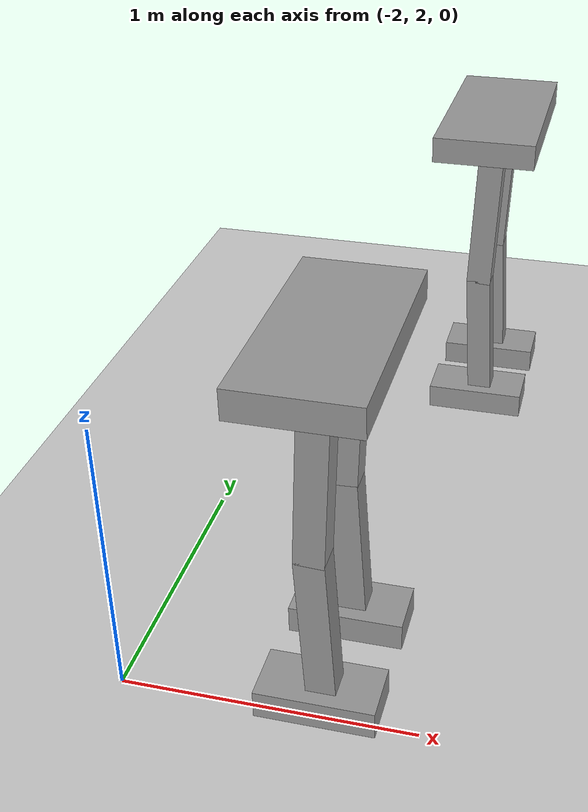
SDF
<sdf version="1.6">
 <world name="default">
  <model name="ground_plane">
   <static>1</static>
   <link name="link">
    <collision name="collision">
     <geometry><plane><normal>0 0 1</normal><size>100 100</size></plane></geometry>
     <surface>
      <contact><collide_bitmask>65535</collide_bitmask></contact>
      <friction><ode><mu>100</mu><mu2>50</mu2></ode></friction>
     </surface>
    </collision>
    <visual name="visual">
     <cast_shadows>0</cast_shadows>
     <geometry><plane><normal>0 0 1</normal><size>100 100</size></plane></geometry>
     <material>
      <script><uri>file://media/materials/scripts/gazebo.material</uri><name>Gazebo/Grey</name></script>
     </material>
    </visual>
   </link>
  </model>
  <model name="HumanoidRobot_clone_0">
   <link name="link_0">
    <inertial>
     <mass>1</mass>
     <inertia>
      <ixx>0.166667</ixx>
      <ixy>0</ixy>
      <ixz>0</ixz>
      <iyy>0.166667</iyy>
      <iyz>0</iyz>
      <izz>0.166667</izz>
     </inertia>
    </inertial>
    <pose>0 0 1.2 0 -0 0</pose>
    <visual name="visual">
     <geometry><box><size>0.4 0.8 0.1</size></box></geometry>
     <material>
      <lighting>1</lighting>
      <script><uri>file://media/materials/scripts/gazebo.material</uri><name>Gazebo/Grey</name></script>
      <shader type="vertex"><normal_map>__default__</normal_map></shader>
      <ambient>0.3 0.3 0.3 1</ambient>
      <diffuse>0.7 0.7 0.7 1</diffuse>
      <specular>0.01 0.01 0.01 1</specular>
      <emissive>0 0 0 1</emissive>
     </material>
    </visual>
    <collision name="collision">
     <geometry><box><size>0.4 0.8 0.1</size></box></geometry>
     <surface>
      <friction>
       <ode><mu>1</mu><mu2>1</mu2><fdir1>0 0 0</fdir1><slip1>0</slip1><slip2>0</slip2></ode>
       <torsional>
        <coefficient>1</coefficient>
        <patch_radius>0</patch_radius>
        <surface_radius>0</surface_radius>
        <use_patch_radius>1</use_patch_radius>
        <ode><slip>0</slip></ode>
       </torsional>
      </friction>
      <bounce><restitution_coefficient>0</restitution_coefficient><threshold>1e+06</threshold></bounce>
      <contact>
       <collide_without_contact>0</collide_without_contact>
       <collide_without_contact_bitmask>1</collide_without_contact_bitmask>
       <collide_bitmask>1</collide_bitmask>
       <ode>
        <soft_cfm>0</soft_cfm>
        <soft_erp>0.2</soft_erp>
        <kp>1e+13</kp>
        <kd>1</kd>
        <max_vel>0.01</max_vel>
        <min_depth>0</min_depth>
       </ode>
       <bullet>
        <split_impulse>1</split_impulse>
        <split_impulse_penetration_threshold>-0.01</split_impulse_penetration_threshold>
        <soft_cfm>0</soft_cfm>
        <soft_erp>0.2</soft_erp>
        <kp>1e+13</kp>
        <kd>1</kd>
       </bullet>
      </contact>
     </surface>
    </collision>
   </link>
   <link name="link_0_clone">
    <inertial>
     <mass>1</mass>
     <inertia>
      <ixx>0.166667</ixx>
      <ixy>0</ixy>
      <ixz>0</ixz>
      <iyy>0.166667</iyy>
      <iyz>0</iyz>
      <izz>0.166667</izz>
     </inertia>
    </inertial>
    <pose>0 0.2 0 0 -0 0</pose>
    <visual name="visual">
     <geometry><box><size>0.4 0.2 0.1</size></box></geometry>
     <material>
      <lighting>1</lighting>
      <script><uri>file://media/materials/scripts/gazebo.material</uri><name>Gazebo/Grey</name></script>
      <shader type="vertex"><normal_map>__default__</normal_map></shader>
      <ambient>0.3 0.3 0.3 1</ambient>
      <diffuse>0.7 0.7 0.7 1</diffuse>
      <specular>0.01 0.01 0.01 1</specular>
      <emissive>0 0 0 1</emissive>
     </material>
    </visual>
    <collision name="collision">
     <geometry><box><size>0.4 0.2 0.1</size></box></geometry>
     <surface>
      <friction>
       <ode><mu>1</mu><mu2>1</mu2><fdir1>0 0 0</fdir1><slip1>0</slip1><slip2>0</slip2></ode>
       <torsional>
        <coefficient>1</coefficient>
        <patch_radius>0</patch_radius>
        <surface_radius>0</surface_radius>
        <use_patch_radius>1</use_patch_radius>
        <ode><slip>0</slip></ode>
       </torsional>
      </friction>
      <bounce><restitution_coefficient>0</restitution_coefficient><threshold>1e+06</threshold></bounce>
      <contact>
       <collide_without_contact>0</collide_without_contact>
       <collide_without_contact_bitmask>1</collide_without_contact_bitmask>
       <collide_bitmask>1</collide_bitmask>
       <ode>
        <soft_cfm>0</soft_cfm>
        <soft_erp>0.2</soft_erp>
        <kp>1e+13</kp>
        <kd>1</kd>
        <max_vel>0.01</max_vel>
        <min_depth>0</min_depth>
       </ode>
       <bullet>
        <split_impulse>1</split_impulse>
        <split_impulse_penetration_threshold>-0.01</split_impulse_penetration_threshold>
        <soft_cfm>0</soft_cfm>
        <soft_erp>0.2</soft_erp>
        <kp>1e+13</kp>
        <kd>1</kd>
       </bullet>
      </contact>
     </surface>
    </collision>
   </link>
   <link name="link_0_clone_clone">
    <inertial>
     <mass>1</mass>
     <inertia>
      <ixx>0.166667</ixx>
      <ixy>0</ixy>
      <ixz>0</ixz>
      <iyy>0.166667</iyy>
      <iyz>0</iyz>
      <izz>0.166667</izz>
     </inertia>
    </inertial>
    <pose>0 -0.2 0 0 -0 0</pose>
    <visual name="visual">
     <geometry><box><size>0.4 0.2 0.1</size></box></geometry>
     <material>
      <lighting>1</lighting>
      <script><uri>file://media/materials/scripts/gazebo.material</uri><name>Gazebo/Grey</name></script>
      <shader type="vertex"><normal_map>__default__</normal_map></shader>
      <ambient>0.3 0.3 0.3 1</ambient>
      <diffuse>0.7 0.7 0.7 1</diffuse>
      <specular>0.01 0.01 0.01 1</specular>
      <emissive>0 0 0 1</emissive>
     </material>
    </visual>
    <collision name="collision">
     <geometry><box><size>0.4 0.2 0.1</size></box></geometry>
     <surface>
      <friction>
       <ode><mu>1</mu><mu2>1</mu2><fdir1>0 0 0</fdir1><slip1>0</slip1><slip2>0</slip2></ode>
       <torsional>
        <coefficient>1</coefficient>
        <patch_radius>0</patch_radius>
        <surface_radius>0</surface_radius>
        <use_patch_radius>1</use_patch_radius>
        <ode><slip>0</slip></ode>
       </torsional>
      </friction>
      <bounce><restitution_coefficient>0</restitution_coefficient><threshold>1e+06</threshold></bounce>
      <contact>
       <collide_without_contact>0</collide_without_contact>
       <collide_without_contact_bitmask>1</collide_without_contact_bitmask>
       <collide_bitmask>1</collide_bitmask>
       <ode>
        <soft_cfm>0</soft_cfm>
        <soft_erp>0.2</soft_erp>
        <kp>1e+13</kp>
        <kd>1</kd>
        <max_vel>0.01</max_vel>
        <min_depth>0</min_depth>
       </ode>
       <bullet>
        <split_impulse>1</split_impulse>
        <split_impulse_penetration_threshold>-0.01</split_impulse_penetration_threshold>
        <soft_cfm>0</soft_cfm>
        <soft_erp>0.2</soft_erp>
        <kp>1e+13</kp>
        <kd>1</kd>
       </bullet>
      </contact>
     </surface>
    </collision>
   </link>
   <link name="link_1">
    <inertial>
     <mass>1</mass>
     <inertia>
      <ixx>0.166667</ixx>
      <ixy>0</ixy>
      <ixz>0</ixz>
      <iyy>0.166667</iyy>
      <iyz>0</iyz>
      <izz>0.166667</izz>
     </inertia>
    </inertial>
    <pose>0 0.2 0.86 0 0.05 0</pose>
    <visual name="visual">
     <geometry><box><size>0.1 0.1 0.6</size></box></geometry>
     <material>
      <lighting>1</lighting>
      <script><uri>file://media/materials/scripts/gazebo.material</uri><name>Gazebo/Grey</name></script>
      <shader type="vertex"><normal_map>__default__</normal_map></shader>
      <ambient>0.3 0.3 0.3 1</ambient>
      <diffuse>0.7 0.7 0.7 1</diffuse>
      <specular>0.01 0.01 0.01 1</specular>
      <emissive>0 0 0 1</emissive>
     </material>
    </visual>
    <collision name="collision">
     <geometry><box><size>0.1 0.1 0.6</size></box></geometry>
     <surface>
      <friction>
       <ode><mu>1</mu><mu2>1</mu2><fdir1>0 0 0</fdir1><slip1>0</slip1><slip2>0</slip2></ode>
       <torsional>
        <coefficient>1</coefficient>
        <patch_radius>0</patch_radius>
        <surface_radius>0</surface_radius>
        <use_patch_radius>1</use_patch_radius>
        <ode><slip>0</slip></ode>
       </torsional>
      </friction>
      <bounce><restitution_coefficient>0</restitution_coefficient><threshold>1e+06</threshold></bounce>
      <contact>
       <collide_without_contact>0</collide_without_contact>
       <collide_without_contact_bitmask>1</collide_without_contact_bitmask>
       <collide_bitmask>1</collide_bitmask>
       <ode>
        <soft_cfm>0</soft_cfm>
        <soft_erp>0.2</soft_erp>
        <kp>1e+13</kp>
        <kd>1</kd>
        <max_vel>0.01</max_vel>
        <min_depth>0</min_depth>
       </ode>
       <bullet>
        <split_impulse>1</split_impulse>
        <split_impulse_penetration_threshold>-0.01</split_impulse_penetration_threshold>
        <soft_cfm>0</soft_cfm>
        <soft_erp>0.2</soft_erp>
        <kp>1e+13</kp>
        <kd>1</kd>
       </bullet>
      </contact>
     </surface>
    </collision>
   </link>
   <link name="link_1_clone">
    <inertial>
     <mass>1</mass>
     <inertia>
      <ixx>0.166667</ixx>
      <ixy>0</ixy>
      <ixz>0</ixz>
      <iyy>0.166667</iyy>
      <iyz>0</iyz>
      <izz>0.166667</izz>
     </inertia>
    </inertial>
    <pose>0 -0.2 0.86 0 0.05 0</pose>
    <visual name="visual">
     <geometry><box><size>0.1 0.1 0.6</size></box></geometry>
     <material>
      <lighting>1</lighting>
      <script><uri>file://media/materials/scripts/gazebo.material</uri><name>Gazebo/Grey</name></script>
      <shader type="vertex"><normal_map>__default__</normal_map></shader>
      <ambient>0.3 0.3 0.3 1</ambient>
      <diffuse>0.7 0.7 0.7 1</diffuse>
      <specular>0.01 0.01 0.01 1</specular>
      <emissive>0 0 0 1</emissive>
     </material>
    </visual>
    <collision name="collision">
     <geometry><box><size>0.1 0.1 0.6</size></box></geometry>
     <surface>
      <friction>
       <ode><mu>1</mu><mu2>1</mu2><fdir1>0 0 0</fdir1><slip1>0</slip1><slip2>0</slip2></ode>
       <torsional>
        <coefficient>1</coefficient>
        <patch_radius>0</patch_radius>
        <surface_radius>0</surface_radius>
        <use_patch_radius>1</use_patch_radius>
        <ode><slip>0</slip></ode>
       </torsional>
      </friction>
      <bounce><restitution_coefficient>0</restitution_coefficient><threshold>1e+06</threshold></bounce>
      <contact>
       <collide_without_contact>0</collide_without_contact>
       <collide_without_contact_bitmask>1</collide_without_contact_bitmask>
       <collide_bitmask>1</collide_bitmask>
       <ode>
        <soft_cfm>0</soft_cfm>
        <soft_erp>0.2</soft_erp>
        <kp>1e+13</kp>
        <kd>1</kd>
        <max_vel>0.01</max_vel>
        <min_depth>0</min_depth>
       </ode>
       <bullet>
        <split_impulse>1</split_impulse>
        <split_impulse_penetration_threshold>-0.01</split_impulse_penetration_threshold>
        <soft_cfm>0</soft_cfm>
        <soft_erp>0.2</soft_erp>
        <kp>1e+13</kp>
        <kd>1</kd>
       </bullet>
      </contact>
     </surface>
    </collision>
   </link>
   <link name="link_1_clone_0">
    <inertial>
     <mass>1</mass>
     <inertia>
      <ixx>0.166667</ixx>
      <ixy>0</ixy>
      <ixz>0</ixz>
      <iyy>0.166667</iyy>
      <iyz>0</iyz>
      <izz>0.166667</izz>
     </inertia>
    </inertial>
    <pose>0 0.2 0.27 0 -0.05 0</pose>
    <visual name="visual">
     <geometry><box><size>0.1 0.1 0.6</size></box></geometry>
     <material>
      <lighting>1</lighting>
      <script><uri>file://media/materials/scripts/gazebo.material</uri><name>Gazebo/Grey</name></script>
      <shader type="vertex"><normal_map>__default__</normal_map></shader>
      <ambient>0.3 0.3 0.3 1</ambient>
      <diffuse>0.7 0.7 0.7 1</diffuse>
      <specular>0.01 0.01 0.01 1</specular>
      <emissive>0 0 0 1</emissive>
     </material>
    </visual>
    <collision name="collision">
     <geometry><box><size>0.1 0.1 0.6</size></box></geometry>
     <surface>
      <friction>
       <ode><mu>1</mu><mu2>1</mu2><fdir1>0 0 0</fdir1><slip1>0</slip1><slip2>0</slip2></ode>
       <torsional>
        <coefficient>1</coefficient>
        <patch_radius>0</patch_radius>
        <surface_radius>0</surface_radius>
        <use_patch_radius>1</use_patch_radius>
        <ode><slip>0</slip></ode>
       </torsional>
      </friction>
      <bounce><restitution_coefficient>0</restitution_coefficient><threshold>1e+06</threshold></bounce>
      <contact>
       <collide_without_contact>0</collide_without_contact>
       <collide_without_contact_bitmask>1</collide_without_contact_bitmask>
       <collide_bitmask>1</collide_bitmask>
       <ode>
        <soft_cfm>0</soft_cfm>
        <soft_erp>0.2</soft_erp>
        <kp>1e+13</kp>
        <kd>1</kd>
        <max_vel>0.01</max_vel>
        <min_depth>0</min_depth>
       </ode>
       <bullet>
        <split_impulse>1</split_impulse>
        <split_impulse_penetration_threshold>-0.01</split_impulse_penetration_threshold>
        <soft_cfm>0</soft_cfm>
        <soft_erp>0.2</soft_erp>
        <kp>1e+13</kp>
        <kd>1</kd>
       </bullet>
      </contact>
     </surface>
    </collision>
   </link>
   <link name="link_1_clone_0_clone">
    <inertial>
     <mass>1</mass>
     <inertia>
      <ixx>0.166667</ixx>
      <ixy>0</ixy>
      <ixz>0</ixz>
      <iyy>0.166667</iyy>
      <iyz>0</iyz>
      <izz>0.166667</izz>
     </inertia>
    </inertial>
    <pose>0 -0.2 0.27 0 -0.05 0</pose>
    <visual name="visual">
     <geometry><box><size>0.1 0.1 0.6</size></box></geometry>
     <material>
      <lighting>1</lighting>
      <script><uri>file://media/materials/scripts/gazebo.material</uri><name>Gazebo/Grey</name></script>
      <shader type="vertex"><normal_map>__default__</normal_map></shader>
      <ambient>0.3 0.3 0.3 1</ambient>
      <diffuse>0.7 0.7 0.7 1</diffuse>
      <specular>0.01 0.01 0.01 1</specular>
      <emissive>0 0 0 1</emissive>
     </material>
    </visual>
    <collision name="collision">
     <geometry><box><size>0.1 0.1 0.6</size></box></geometry>
     <surface>
      <friction>
       <ode><mu>1</mu><mu2>1</mu2><fdir1>0 0 0</fdir1><slip1>0</slip1><slip2>0</slip2></ode>
       <torsional>
        <coefficient>1</coefficient>
        <patch_radius>0</patch_radius>
        <surface_radius>0</surface_radius>
        <use_patch_radius>1</use_patch_radius>
        <ode><slip>0</slip></ode>
       </torsional>
      </friction>
      <bounce><restitution_coefficient>0</restitution_coefficient><threshold>1e+06</threshold></bounce>
      <contact>
       <collide_without_contact>0</collide_without_contact>
       <collide_without_contact_bitmask>1</collide_without_contact_bitmask>
       <collide_bitmask>1</collide_bitmask>
       <ode>
        <soft_cfm>0</soft_cfm>
        <soft_erp>0.2</soft_erp>
        <kp>1e+13</kp>
        <kd>1</kd>
        <max_vel>0.01</max_vel>
        <min_depth>0</min_depth>
       </ode>
       <bullet>
        <split_impulse>1</split_impulse>
        <split_impulse_penetration_threshold>-0.01</split_impulse_penetration_threshold>
        <soft_cfm>0</soft_cfm>
        <soft_erp>0.2</soft_erp>
        <kp>1e+13</kp>
        <kd>1</kd>
       </bullet>
      </contact>
     </surface>
    </collision>
   </link>
   <joint name="link_0_JOINT_0" type="fixed">
    <parent>link_0</parent>
    <child>link_1_clone</child>
    <physics>
     <ode><limit><cfm>0</cfm><erp>0.2</erp></limit><suspension><cfm>0</cfm><erp>0.2</erp></suspension></ode>
    </physics>
   </joint>
   <joint name="link_0_JOINT_1" type="fixed">
    <parent>link_0</parent>
    <child>link_1</child>
    <physics>
     <ode><limit><cfm>0</cfm><erp>0.2</erp></limit><suspension><cfm>0</cfm><erp>0.2</erp></suspension></ode>
    </physics>
   </joint>
   <joint name="link_1_JOINT_3" type="fixed">
    <parent>link_1</parent>
    <child>link_1_clone_0</child>
    <physics>
     <ode><limit><cfm>0</cfm><erp>0.2</erp></limit><suspension><cfm>0</cfm><erp>0.2</erp></suspension></ode>
    </physics>
   </joint>
   <joint name="link_1_clone_0_JOINT_5" type="fixed">
    <parent>link_1_clone_0</parent>
    <child>link_0_clone</child>
    <physics>
     <ode><limit><cfm>0</cfm><erp>0.2</erp></limit><suspension><cfm>0</cfm><erp>0.2</erp></suspension></ode>
    </physics>
   </joint>
   <joint name="link_1_clone_0_clone_JOINT_4" type="fixed">
    <parent>link_1_clone_0_clone</parent>
    <child>link_0_clone_clone</child>
    <physics>
     <ode><limit><cfm>0</cfm><erp>0.2</erp></limit><suspension><cfm>0</cfm><erp>0.2</erp></suspension></ode>
    </physics>
   </joint>
   <joint name="link_1_clone_JOINT_2" type="fixed">
    <parent>link_1_clone</parent>
    <child>link_1_clone_0_clone</child>
    <physics>
     <ode><limit><cfm>0</cfm><erp>0.2</erp></limit><suspension><cfm>0</cfm><erp>0.2</erp></suspension></ode>
    </physics>
   </joint>
   <static>0</static>
   <pose>-1.13078 4.1809 0.05 2e-06 -1e-06 -7.2e-05</pose>
  </model>
  <model name="HumanoidRobot_clone_1">
   <link name="link_0">
    <inertial>
     <mass>1</mass>
     <inertia>
      <ixx>0.166667</ixx>
      <ixy>0</ixy>
      <ixz>0</ixz>
      <iyy>0.166667</iyy>
      <iyz>0</iyz>
      <izz>0.166667</izz>
     </inertia>
    </inertial>
    <pose>0 0 1.2 0 -0 0</pose>
    <visual name="visual">
     <geometry><box><size>0.4 0.8 0.1</size></box></geometry>
     <material>
      <lighting>1</lighting>
      <script><uri>file://media/materials/scripts/gazebo.material</uri><name>Gazebo/Grey</name></script>
      <shader type="vertex"><normal_map>__default__</normal_map></shader>
      <ambient>0.3 0.3 0.3 1</ambient>
      <diffuse>0.7 0.7 0.7 1</diffuse>
      <specular>0.01 0.01 0.01 1</specular>
      <emissive>0 0 0 1</emissive>
     </material>
    </visual>
    <collision name="collision">
     <geometry><box><size>0.4 0.8 0.1</size></box></geometry>
     <surface>
      <friction>
       <ode><mu>1</mu><mu2>1</mu2><fdir1>0 0 0</fdir1><slip1>0</slip1><slip2>0</slip2></ode>
       <torsional>
        <coefficient>1</coefficient>
        <patch_radius>0</patch_radius>
        <surface_radius>0</surface_radius>
        <use_patch_radius>1</use_patch_radius>
        <ode><slip>0</slip></ode>
       </torsional>
      </friction>
      <bounce><restitution_coefficient>0</restitution_coefficient><threshold>1e+06</threshold></bounce>
      <contact>
       <collide_without_contact>0</collide_without_contact>
       <collide_without_contact_bitmask>1</collide_without_contact_bitmask>
       <collide_bitmask>1</collide_bitmask>
       <ode>
        <soft_cfm>0</soft_cfm>
        <soft_erp>0.2</soft_erp>
        <kp>1e+13</kp>
        <kd>1</kd>
        <max_vel>0.01</max_vel>
        <min_depth>0</min_depth>
       </ode>
       <bullet>
        <split_impulse>1</split_impulse>
        <split_impulse_penetration_threshold>-0.01</split_impulse_penetration_threshold>
        <soft_cfm>0</soft_cfm>
        <soft_erp>0.2</soft_erp>
        <kp>1e+13</kp>
        <kd>1</kd>
       </bullet>
      </contact>
     </surface>
    </collision>
   </link>
   <link name="link_0_clone">
    <inertial>
     <mass>1</mass>
     <inertia>
      <ixx>0.166667</ixx>
      <ixy>0</ixy>
      <ixz>0</ixz>
      <iyy>0.166667</iyy>
      <iyz>0</iyz>
      <izz>0.166667</izz>
     </inertia>
    </inertial>
    <pose>0 0.2 0 0 -0 0</pose>
    <visual name="visual">
     <geometry><box><size>0.4 0.2 0.1</size></box></geometry>
     <material>
      <lighting>1</lighting>
      <script><uri>file://media/materials/scripts/gazebo.material</uri><name>Gazebo/Grey</name></script>
      <shader type="vertex"><normal_map>__default__</normal_map></shader>
      <ambient>0.3 0.3 0.3 1</ambient>
      <diffuse>0.7 0.7 0.7 1</diffuse>
      <specular>0.01 0.01 0.01 1</specular>
      <emissive>0 0 0 1</emissive>
     </material>
    </visual>
    <collision name="collision">
     <geometry><box><size>0.4 0.2 0.1</size></box></geometry>
     <surface>
      <friction>
       <ode><mu>1</mu><mu2>1</mu2><fdir1>0 0 0</fdir1><slip1>0</slip1><slip2>0</slip2></ode>
       <torsional>
        <coefficient>1</coefficient>
        <patch_radius>0</patch_radius>
        <surface_radius>0</surface_radius>
        <use_patch_radius>1</use_patch_radius>
        <ode><slip>0</slip></ode>
       </torsional>
      </friction>
      <bounce><restitution_coefficient>0</restitution_coefficient><threshold>1e+06</threshold></bounce>
      <contact>
       <collide_without_contact>0</collide_without_contact>
       <collide_without_contact_bitmask>1</collide_without_contact_bitmask>
       <collide_bitmask>1</collide_bitmask>
       <ode>
        <soft_cfm>0</soft_cfm>
        <soft_erp>0.2</soft_erp>
        <kp>1e+13</kp>
        <kd>1</kd>
        <max_vel>0.01</max_vel>
        <min_depth>0</min_depth>
       </ode>
       <bullet>
        <split_impulse>1</split_impulse>
        <split_impulse_penetration_threshold>-0.01</split_impulse_penetration_threshold>
        <soft_cfm>0</soft_cfm>
        <soft_erp>0.2</soft_erp>
        <kp>1e+13</kp>
        <kd>1</kd>
       </bullet>
      </contact>
     </surface>
    </collision>
   </link>
   <link name="link_0_clone_clone">
    <inertial>
     <mass>1</mass>
     <inertia>
      <ixx>0.166667</ixx>
      <ixy>0</ixy>
      <ixz>0</ixz>
      <iyy>0.166667</iyy>
      <iyz>0</iyz>
      <izz>0.166667</izz>
     </inertia>
    </inertial>
    <pose>0 -0.2 0 0 -0 0</pose>
    <visual name="visual">
     <geometry><box><size>0.4 0.2 0.1</size></box></geometry>
     <material>
      <lighting>1</lighting>
      <script><uri>file://media/materials/scripts/gazebo.material</uri><name>Gazebo/Grey</name></script>
      <shader type="vertex"><normal_map>__default__</normal_map></shader>
      <ambient>0.3 0.3 0.3 1</ambient>
      <diffuse>0.7 0.7 0.7 1</diffuse>
      <specular>0.01 0.01 0.01 1</specular>
      <emissive>0 0 0 1</emissive>
     </material>
    </visual>
    <collision name="collision">
     <geometry><box><size>0.4 0.2 0.1</size></box></geometry>
     <surface>
      <friction>
       <ode><mu>1</mu><mu2>1</mu2><fdir1>0 0 0</fdir1><slip1>0</slip1><slip2>0</slip2></ode>
       <torsional>
        <coefficient>1</coefficient>
        <patch_radius>0</patch_radius>
        <surface_radius>0</surface_radius>
        <use_patch_radius>1</use_patch_radius>
        <ode><slip>0</slip></ode>
       </torsional>
      </friction>
      <bounce><restitution_coefficient>0</restitution_coefficient><threshold>1e+06</threshold></bounce>
      <contact>
       <collide_without_contact>0</collide_without_contact>
       <collide_without_contact_bitmask>1</collide_without_contact_bitmask>
       <collide_bitmask>1</collide_bitmask>
       <ode>
        <soft_cfm>0</soft_cfm>
        <soft_erp>0.2</soft_erp>
        <kp>1e+13</kp>
        <kd>1</kd>
        <max_vel>0.01</max_vel>
        <min_depth>0</min_depth>
       </ode>
       <bullet>
        <split_impulse>1</split_impulse>
        <split_impulse_penetration_threshold>-0.01</split_impulse_penetration_threshold>
        <soft_cfm>0</soft_cfm>
        <soft_erp>0.2</soft_erp>
        <kp>1e+13</kp>
        <kd>1</kd>
       </bullet>
      </contact>
     </surface>
    </collision>
   </link>
   <link name="link_1">
    <inertial>
     <mass>1</mass>
     <inertia>
      <ixx>0.166667</ixx>
      <ixy>0</ixy>
      <ixz>0</ixz>
      <iyy>0.166667</iyy>
      <iyz>0</iyz>
      <izz>0.166667</izz>
     </inertia>
    </inertial>
    <pose>0 0.2 0.86 0 0.05 0</pose>
    <visual name="visual">
     <geometry><box><size>0.1 0.1 0.6</size></box></geometry>
     <material>
      <lighting>1</lighting>
      <script><uri>file://media/materials/scripts/gazebo.material</uri><name>Gazebo/Grey</name></script>
      <shader type="vertex"><normal_map>__default__</normal_map></shader>
      <ambient>0.3 0.3 0.3 1</ambient>
      <diffuse>0.7 0.7 0.7 1</diffuse>
      <specular>0.01 0.01 0.01 1</specular>
      <emissive>0 0 0 1</emissive>
     </material>
    </visual>
    <collision name="collision">
     <geometry><box><size>0.1 0.1 0.6</size></box></geometry>
     <surface>
      <friction>
       <ode><mu>1</mu><mu2>1</mu2><fdir1>0 0 0</fdir1><slip1>0</slip1><slip2>0</slip2></ode>
       <torsional>
        <coefficient>1</coefficient>
        <patch_radius>0</patch_radius>
        <surface_radius>0</surface_radius>
        <use_patch_radius>1</use_patch_radius>
        <ode><slip>0</slip></ode>
       </torsional>
      </friction>
      <bounce><restitution_coefficient>0</restitution_coefficient><threshold>1e+06</threshold></bounce>
      <contact>
       <collide_without_contact>0</collide_without_contact>
       <collide_without_contact_bitmask>1</collide_without_contact_bitmask>
       <collide_bitmask>1</collide_bitmask>
       <ode>
        <soft_cfm>0</soft_cfm>
        <soft_erp>0.2</soft_erp>
        <kp>1e+13</kp>
        <kd>1</kd>
        <max_vel>0.01</max_vel>
        <min_depth>0</min_depth>
       </ode>
       <bullet>
        <split_impulse>1</split_impulse>
        <split_impulse_penetration_threshold>-0.01</split_impulse_penetration_threshold>
        <soft_cfm>0</soft_cfm>
        <soft_erp>0.2</soft_erp>
        <kp>1e+13</kp>
        <kd>1</kd>
       </bullet>
      </contact>
     </surface>
    </collision>
   </link>
   <link name="link_1_clone">
    <inertial>
     <mass>1</mass>
     <inertia>
      <ixx>0.166667</ixx>
      <ixy>0</ixy>
      <ixz>0</ixz>
      <iyy>0.166667</iyy>
      <iyz>0</iyz>
      <izz>0.166667</izz>
     </inertia>
    </inertial>
    <pose>0 -0.2 0.86 0 0.05 0</pose>
    <visual name="visual">
     <geometry><box><size>0.1 0.1 0.6</size></box></geometry>
     <material>
      <lighting>1</lighting>
      <script><uri>file://media/materials/scripts/gazebo.material</uri><name>Gazebo/Grey</name></script>
      <shader type="vertex"><normal_map>__default__</normal_map></shader>
      <ambient>0.3 0.3 0.3 1</ambient>
      <diffuse>0.7 0.7 0.7 1</diffuse>
      <specular>0.01 0.01 0.01 1</specular>
      <emissive>0 0 0 1</emissive>
     </material>
    </visual>
    <collision name="collision">
     <geometry><box><size>0.1 0.1 0.6</size></box></geometry>
     <surface>
      <friction>
       <ode><mu>1</mu><mu2>1</mu2><fdir1>0 0 0</fdir1><slip1>0</slip1><slip2>0</slip2></ode>
       <torsional>
        <coefficient>1</coefficient>
        <patch_radius>0</patch_radius>
        <surface_radius>0</surface_radius>
        <use_patch_radius>1</use_patch_radius>
        <ode><slip>0</slip></ode>
       </torsional>
      </friction>
      <bounce><restitution_coefficient>0</restitution_coefficient><threshold>1e+06</threshold></bounce>
      <contact>
       <collide_without_contact>0</collide_without_contact>
       <collide_without_contact_bitmask>1</collide_without_contact_bitmask>
       <collide_bitmask>1</collide_bitmask>
       <ode>
        <soft_cfm>0</soft_cfm>
        <soft_erp>0.2</soft_erp>
        <kp>1e+13</kp>
        <kd>1</kd>
        <max_vel>0.01</max_vel>
        <min_depth>0</min_depth>
       </ode>
       <bullet>
        <split_impulse>1</split_impulse>
        <split_impulse_penetration_threshold>-0.01</split_impulse_penetration_threshold>
        <soft_cfm>0</soft_cfm>
        <soft_erp>0.2</soft_erp>
        <kp>1e+13</kp>
        <kd>1</kd>
       </bullet>
      </contact>
     </surface>
    </collision>
   </link>
   <link name="link_1_clone_0">
    <inertial>
     <mass>1</mass>
     <inertia>
      <ixx>0.166667</ixx>
      <ixy>0</ixy>
      <ixz>0</ixz>
      <iyy>0.166667</iyy>
      <iyz>0</iyz>
      <izz>0.166667</izz>
     </inertia>
    </inertial>
    <pose>0 0.2 0.27 0 -0.05 0</pose>
    <visual name="visual">
     <geometry><box><size>0.1 0.1 0.6</size></box></geometry>
     <material>
      <lighting>1</lighting>
      <script><uri>file://media/materials/scripts/gazebo.material</uri><name>Gazebo/Grey</name></script>
      <shader type="vertex"><normal_map>__default__</normal_map></shader>
      <ambient>0.3 0.3 0.3 1</ambient>
      <diffuse>0.7 0.7 0.7 1</diffuse>
      <specular>0.01 0.01 0.01 1</specular>
      <emissive>0 0 0 1</emissive>
     </material>
    </visual>
    <collision name="collision">
     <geometry><box><size>0.1 0.1 0.6</size></box></geometry>
     <surface>
      <friction>
       <ode><mu>1</mu><mu2>1</mu2><fdir1>0 0 0</fdir1><slip1>0</slip1><slip2>0</slip2></ode>
       <torsional>
        <coefficient>1</coefficient>
        <patch_radius>0</patch_radius>
        <surface_radius>0</surface_radius>
        <use_patch_radius>1</use_patch_radius>
        <ode><slip>0</slip></ode>
       </torsional>
      </friction>
      <bounce><restitution_coefficient>0</restitution_coefficient><threshold>1e+06</threshold></bounce>
      <contact>
       <collide_without_contact>0</collide_without_contact>
       <collide_without_contact_bitmask>1</collide_without_contact_bitmask>
       <collide_bitmask>1</collide_bitmask>
       <ode>
        <soft_cfm>0</soft_cfm>
        <soft_erp>0.2</soft_erp>
        <kp>1e+13</kp>
        <kd>1</kd>
        <max_vel>0.01</max_vel>
        <min_depth>0</min_depth>
       </ode>
       <bullet>
        <split_impulse>1</split_impulse>
        <split_impulse_penetration_threshold>-0.01</split_impulse_penetration_threshold>
        <soft_cfm>0</soft_cfm>
        <soft_erp>0.2</soft_erp>
        <kp>1e+13</kp>
        <kd>1</kd>
       </bullet>
      </contact>
     </surface>
    </collision>
   </link>
   <link name="link_1_clone_0_clone">
    <inertial>
     <mass>1</mass>
     <inertia>
      <ixx>0.166667</ixx>
      <ixy>0</ixy>
      <ixz>0</ixz>
      <iyy>0.166667</iyy>
      <iyz>0</iyz>
      <izz>0.166667</izz>
     </inertia>
    </inertial>
    <pose>0 -0.2 0.27 0 -0.05 0</pose>
    <visual name="visual">
     <geometry><box><size>0.1 0.1 0.6</size></box></geometry>
     <material>
      <lighting>1</lighting>
      <script><uri>file://media/materials/scripts/gazebo.material</uri><name>Gazebo/Grey</name></script>
      <shader type="vertex"><normal_map>__default__</normal_map></shader>
      <ambient>0.3 0.3 0.3 1</ambient>
      <diffuse>0.7 0.7 0.7 1</diffuse>
      <specular>0.01 0.01 0.01 1</specular>
      <emissive>0 0 0 1</emissive>
     </material>
    </visual>
    <collision name="collision">
     <geometry><box><size>0.1 0.1 0.6</size></box></geometry>
     <surface>
      <friction>
       <ode><mu>1</mu><mu2>1</mu2><fdir1>0 0 0</fdir1><slip1>0</slip1><slip2>0</slip2></ode>
       <torsional>
        <coefficient>1</coefficient>
        <patch_radius>0</patch_radius>
        <surface_radius>0</surface_radius>
        <use_patch_radius>1</use_patch_radius>
        <ode><slip>0</slip></ode>
       </torsional>
      </friction>
      <bounce><restitution_coefficient>0</restitution_coefficient><threshold>1e+06</threshold></bounce>
      <contact>
       <collide_without_contact>0</collide_without_contact>
       <collide_without_contact_bitmask>1</collide_without_contact_bitmask>
       <collide_bitmask>1</collide_bitmask>
       <ode>
        <soft_cfm>0</soft_cfm>
        <soft_erp>0.2</soft_erp>
        <kp>1e+13</kp>
        <kd>1</kd>
        <max_vel>0.01</max_vel>
        <min_depth>0</min_depth>
       </ode>
       <bullet>
        <split_impulse>1</split_impulse>
        <split_impulse_penetration_threshold>-0.01</split_impulse_penetration_threshold>
        <soft_cfm>0</soft_cfm>
        <soft_erp>0.2</soft_erp>
        <kp>1e+13</kp>
        <kd>1</kd>
       </bullet>
      </contact>
     </surface>
    </collision>
   </link>
   <joint name="link_0_JOINT_0" type="fixed">
    <parent>link_0</parent>
    <child>link_1_clone</child>
    <physics>
     <ode><limit><cfm>0</cfm><erp>0.2</erp></limit><suspension><cfm>0</cfm><erp>0.2</erp></suspension></ode>
    </physics>
   </joint>
   <joint name="link_0_JOINT_1" type="fixed">
    <parent>link_0</parent>
    <child>link_1</child>
    <physics>
     <ode><limit><cfm>0</cfm><erp>0.2</erp></limit><suspension><cfm>0</cfm><erp>0.2</erp></suspension></ode>
    </physics>
   </joint>
   <joint name="link_1_JOINT_3" type="fixed">
    <parent>link_1</parent>
    <child>link_1_clone_0</child>
    <physics>
     <ode><limit><cfm>0</cfm><erp>0.2</erp></limit><suspension><cfm>0</cfm><erp>0.2</erp></suspension></ode>
    </physics>
   </joint>
   <joint name="link_1_clone_0_JOINT_5" type="fixed">
    <parent>link_1_clone_0</parent>
    <child>link_0_clone</child>
    <physics>
     <ode><limit><cfm>0</cfm><erp>0.2</erp></limit><suspension><cfm>0</cfm><erp>0.2</erp></suspension></ode>
    </physics>
   </joint>
   <joint name="link_1_clone_0_clone_JOINT_4" type="fixed">
    <parent>link_1_clone_0_clone</parent>
    <child>link_0_clone_clone</child>
    <physics>
     <ode><limit><cfm>0</cfm><erp>0.2</erp></limit><suspension><cfm>0</cfm><erp>0.2</erp></suspension></ode>
    </physics>
   </joint>
   <joint name="link_1_clone_JOINT_2" type="fixed">
    <parent>link_1_clone</parent>
    <child>link_1_clone_0_clone</child>
    <physics>
     <ode><limit><cfm>0</cfm><erp>0.2</erp></limit><suspension><cfm>0</cfm><erp>0.2</erp></suspension></ode>
    </physics>
   </joint>
   <static>0</static>
   <pose>-1.33051 2.25591 0.049992 -1e-06 -2e-06 -5e-05</pose>
  </model>
 </world>
</sdf>
